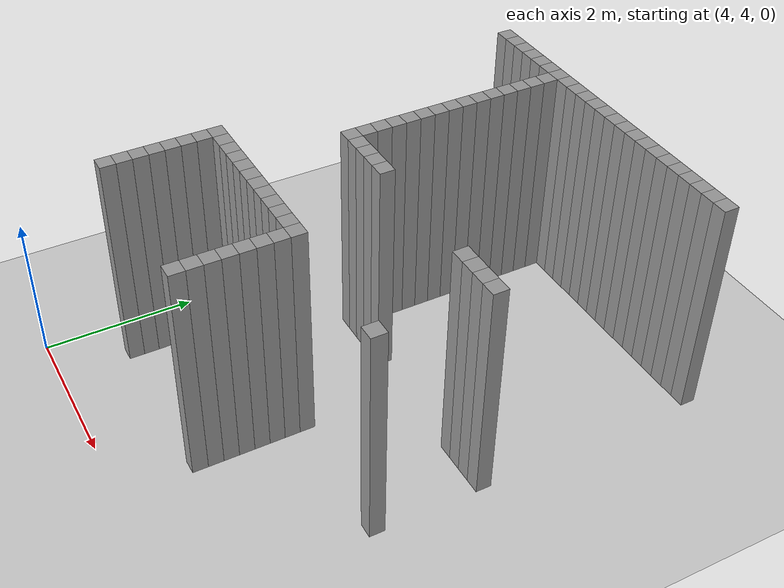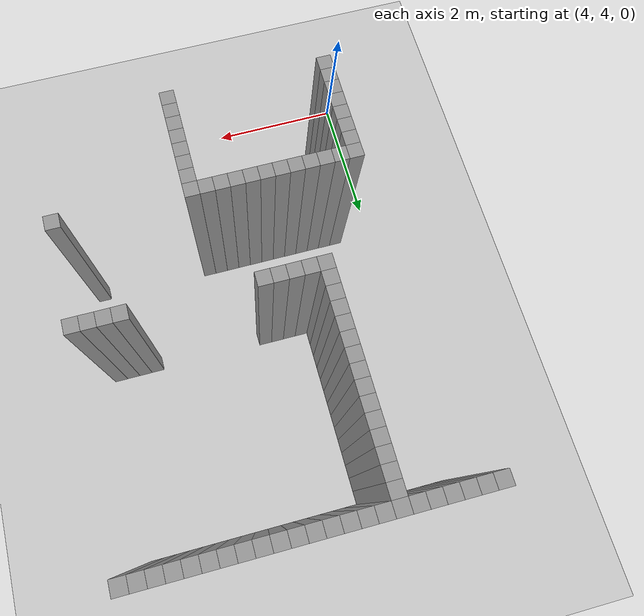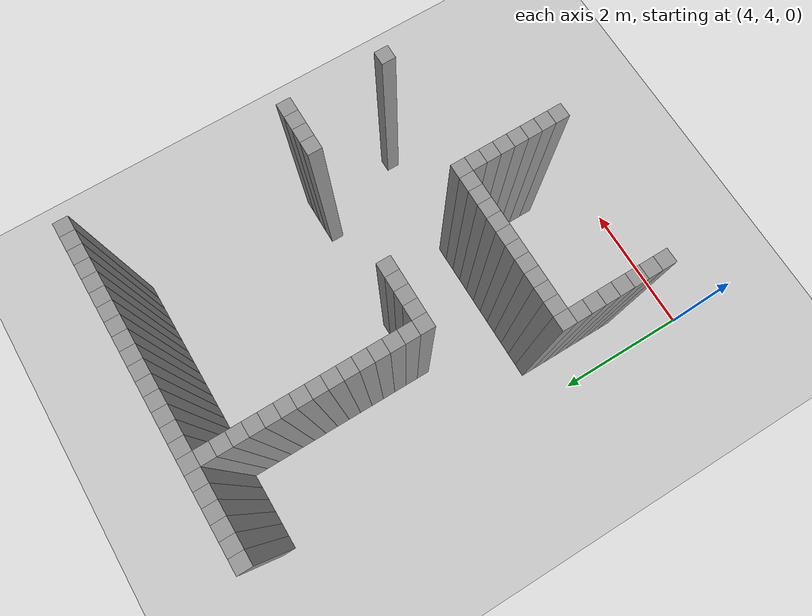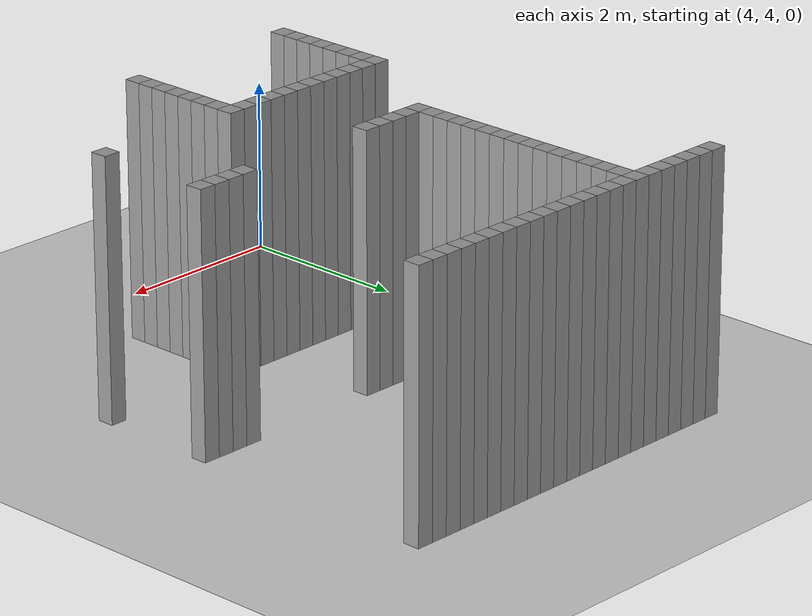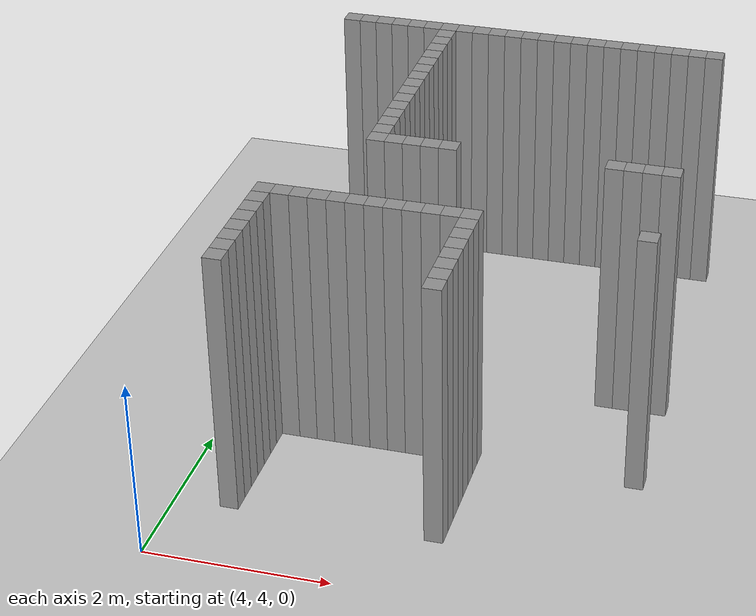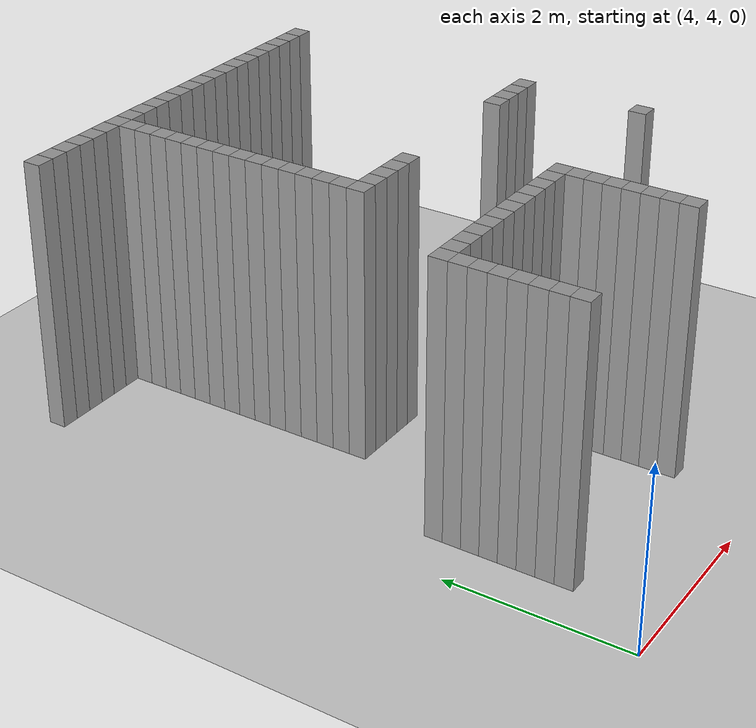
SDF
<sdf version="1.7">
 <world name="default">
  <model name="ground_plane">
   <static>1</static>
   <link name="link">
    <collision name="collision">
     <geometry><plane><normal>0 0 1</normal><size>100 100</size></plane></geometry>
     <surface>
      <contact><collide_bitmask>65535</collide_bitmask></contact>
      <friction><ode><mu>100</mu><mu2>50</mu2></ode></friction>
     </surface>
    </collision>
    <visual name="visual">
     <cast_shadows>0</cast_shadows>
     <geometry><plane><normal>0 0 1</normal><size>100 100</size></plane></geometry>
     <material>
      <script><uri>file://media/materials/scripts/gazebo.material</uri><name>Gazebo/Grey</name></script>
     </material>
    </visual>
   </link>
  </model>
  <model name="image1">
   <pose>-1 -1 0 0 -0 0</pose>
   <link name="Wall_220">
    <collision name="Wall_220_Collision">
     <geometry><box><size>0.2 0.2 3</size></box></geometry>
     <pose>0 0 1.5 0 -0 0</pose>
    </collision>
    <visual name="Wall_220_Visual">
     <pose>0 0 1.5 0 -0 0</pose>
     <geometry><box><size>0.2 0.2 3</size></box></geometry>
     <material>
      <script><uri>file://media/materials/scripts/gazebo.material</uri><name>Gazebo/Grey</name></script>
      <ambient>1 1 1 1</ambient>
     </material>
     <meta><layer>0</layer></meta>
    </visual>
    <pose>5.2 11.8 0 0 -0 0</pose>
   </link>
   <link name="Wall_223">
    <collision name="Wall_223_Collision">
     <geometry><box><size>0.2 0.2 3</size></box></geometry>
     <pose>0 0 1.5 0 -0 0</pose>
    </collision>
    <visual name="Wall_223_Visual">
     <pose>0 0 1.5 0 -0 0</pose>
     <geometry><box><size>0.2 0.2 3</size></box></geometry>
     <material>
      <script><uri>file://media/materials/scripts/gazebo.material</uri><name>Gazebo/Grey</name></script>
      <ambient>1 1 1 1</ambient>
     </material>
     <meta><layer>0</layer></meta>
    </visual>
    <pose>5.4 11.8 0 0 -0 0</pose>
   </link>
   <link name="Wall_247">
    <collision name="Wall_247_Collision">
     <geometry><box><size>0.2 0.2 3</size></box></geometry>
     <pose>0 0 1.5 0 -0 0</pose>
    </collision>
    <visual name="Wall_247_Visual">
     <pose>0 0 1.5 0 -0 0</pose>
     <geometry><box><size>0.2 0.2 3</size></box></geometry>
     <material>
      <script><uri>file://media/materials/scripts/gazebo.material</uri><name>Gazebo/Grey</name></script>
      <ambient>1 1 1 1</ambient>
     </material>
     <meta><layer>0</layer></meta>
    </visual>
    <pose>5.6000000000000005 6.0 0 0 -0 0</pose>
   </link>
   <link name="Wall_248">
    <collision name="Wall_248_Collision">
     <geometry><box><size>0.2 0.2 3</size></box></geometry>
     <pose>0 0 1.5 0 -0 0</pose>
    </collision>
    <visual name="Wall_248_Visual">
     <pose>0 0 1.5 0 -0 0</pose>
     <geometry><box><size>0.2 0.2 3</size></box></geometry>
     <material>
      <script><uri>file://media/materials/scripts/gazebo.material</uri><name>Gazebo/Grey</name></script>
      <ambient>1 1 1 1</ambient>
     </material>
     <meta><layer>0</layer></meta>
    </visual>
    <pose>5.6000000000000005 6.2 0 0 -0 0</pose>
   </link>
   <link name="Wall_249">
    <collision name="Wall_249_Collision">
     <geometry><box><size>0.2 0.2 3</size></box></geometry>
     <pose>0 0 1.5 0 -0 0</pose>
    </collision>
    <visual name="Wall_249_Visual">
     <pose>0 0 1.5 0 -0 0</pose>
     <geometry><box><size>0.2 0.2 3</size></box></geometry>
     <material>
      <script><uri>file://media/materials/scripts/gazebo.material</uri><name>Gazebo/Grey</name></script>
      <ambient>1 1 1 1</ambient>
     </material>
     <meta><layer>0</layer></meta>
    </visual>
    <pose>5.6000000000000005 6.4 0 0 -0 0</pose>
   </link>
   <link name="Wall_250">
    <collision name="Wall_250_Collision">
     <geometry><box><size>0.2 0.2 3</size></box></geometry>
     <pose>0 0 1.5 0 -0 0</pose>
    </collision>
    <visual name="Wall_250_Visual">
     <pose>0 0 1.5 0 -0 0</pose>
     <geometry><box><size>0.2 0.2 3</size></box></geometry>
     <material>
      <script><uri>file://media/materials/scripts/gazebo.material</uri><name>Gazebo/Grey</name></script>
      <ambient>1 1 1 1</ambient>
     </material>
     <meta><layer>0</layer></meta>
    </visual>
    <pose>5.6000000000000005 6.6000000000000005 0 0 -0 0</pose>
   </link>
   <link name="Wall_251">
    <collision name="Wall_251_Collision">
     <geometry><box><size>0.2 0.2 3</size></box></geometry>
     <pose>0 0 1.5 0 -0 0</pose>
    </collision>
    <visual name="Wall_251_Visual">
     <pose>0 0 1.5 0 -0 0</pose>
     <geometry><box><size>0.2 0.2 3</size></box></geometry>
     <material>
      <script><uri>file://media/materials/scripts/gazebo.material</uri><name>Gazebo/Grey</name></script>
      <ambient>1 1 1 1</ambient>
     </material>
     <meta><layer>0</layer></meta>
    </visual>
    <pose>5.6000000000000005 6.800000000000001 0 0 -0 0</pose>
   </link>
   <link name="Wall_252">
    <collision name="Wall_252_Collision">
     <geometry><box><size>0.2 0.2 3</size></box></geometry>
     <pose>0 0 1.5 0 -0 0</pose>
    </collision>
    <visual name="Wall_252_Visual">
     <pose>0 0 1.5 0 -0 0</pose>
     <geometry><box><size>0.2 0.2 3</size></box></geometry>
     <material>
      <script><uri>file://media/materials/scripts/gazebo.material</uri><name>Gazebo/Grey</name></script>
      <ambient>1 1 1 1</ambient>
     </material>
     <meta><layer>0</layer></meta>
    </visual>
    <pose>5.6000000000000005 7.0 0 0 -0 0</pose>
   </link>
   <link name="Wall_253">
    <collision name="Wall_253_Collision">
     <geometry><box><size>0.2 0.2 3</size></box></geometry>
     <pose>0 0 1.5 0 -0 0</pose>
    </collision>
    <visual name="Wall_253_Visual">
     <pose>0 0 1.5 0 -0 0</pose>
     <geometry><box><size>0.2 0.2 3</size></box></geometry>
     <material>
      <script><uri>file://media/materials/scripts/gazebo.material</uri><name>Gazebo/Grey</name></script>
      <ambient>1 1 1 1</ambient>
     </material>
     <meta><layer>0</layer></meta>
    </visual>
    <pose>5.6000000000000005 7.2 0 0 -0 0</pose>
   </link>
   <link name="Wall_254">
    <collision name="Wall_254_Collision">
     <geometry><box><size>0.2 0.2 3</size></box></geometry>
     <pose>0 0 1.5 0 -0 0</pose>
    </collision>
    <visual name="Wall_254_Visual">
     <pose>0 0 1.5 0 -0 0</pose>
     <geometry><box><size>0.2 0.2 3</size></box></geometry>
     <material>
      <script><uri>file://media/materials/scripts/gazebo.material</uri><name>Gazebo/Grey</name></script>
      <ambient>1 1 1 1</ambient>
     </material>
     <meta><layer>0</layer></meta>
    </visual>
    <pose>5.6000000000000005 7.4 0 0 -0 0</pose>
   </link>
   <link name="Wall_255">
    <collision name="Wall_255_Collision">
     <geometry><box><size>0.2 0.2 3</size></box></geometry>
     <pose>0 0 1.5 0 -0 0</pose>
    </collision>
    <visual name="Wall_255_Visual">
     <pose>0 0 1.5 0 -0 0</pose>
     <geometry><box><size>0.2 0.2 3</size></box></geometry>
     <material>
      <script><uri>file://media/materials/scripts/gazebo.material</uri><name>Gazebo/Grey</name></script>
      <ambient>1 1 1 1</ambient>
     </material>
     <meta><layer>0</layer></meta>
    </visual>
    <pose>5.6000000000000005 11.8 0 0 -0 0</pose>
   </link>
   <link name="Wall_257">
    <collision name="Wall_257_Collision">
     <geometry><box><size>0.2 0.2 3</size></box></geometry>
     <pose>0 0 1.5 0 -0 0</pose>
    </collision>
    <visual name="Wall_257_Visual">
     <pose>0 0 1.5 0 -0 0</pose>
     <geometry><box><size>0.2 0.2 3</size></box></geometry>
     <material>
      <script><uri>file://media/materials/scripts/gazebo.material</uri><name>Gazebo/Grey</name></script>
      <ambient>1 1 1 1</ambient>
     </material>
     <meta><layer>0</layer></meta>
    </visual>
    <pose>5.800000000000001 7.4 0 0 -0 0</pose>
   </link>
   <link name="Wall_258">
    <collision name="Wall_258_Collision">
     <geometry><box><size>0.2 0.2 3</size></box></geometry>
     <pose>0 0 1.5 0 -0 0</pose>
    </collision>
    <visual name="Wall_258_Visual">
     <pose>0 0 1.5 0 -0 0</pose>
     <geometry><box><size>0.2 0.2 3</size></box></geometry>
     <material>
      <script><uri>file://media/materials/scripts/gazebo.material</uri><name>Gazebo/Grey</name></script>
      <ambient>1 1 1 1</ambient>
     </material>
     <meta><layer>0</layer></meta>
    </visual>
    <pose>5.800000000000001 11.8 0 0 -0 0</pose>
   </link>
   <link name="Wall_260">
    <collision name="Wall_260_Collision">
     <geometry><box><size>0.2 0.2 3</size></box></geometry>
     <pose>0 0 1.5 0 -0 0</pose>
    </collision>
    <visual name="Wall_260_Visual">
     <pose>0 0 1.5 0 -0 0</pose>
     <geometry><box><size>0.2 0.2 3</size></box></geometry>
     <material>
      <script><uri>file://media/materials/scripts/gazebo.material</uri><name>Gazebo/Grey</name></script>
      <ambient>1 1 1 1</ambient>
     </material>
     <meta><layer>0</layer></meta>
    </visual>
    <pose>6.0 7.4 0 0 -0 0</pose>
   </link>
   <link name="Wall_261">
    <collision name="Wall_261_Collision">
     <geometry><box><size>0.2 0.2 3</size></box></geometry>
     <pose>0 0 1.5 0 -0 0</pose>
    </collision>
    <visual name="Wall_261_Visual">
     <pose>0 0 1.5 0 -0 0</pose>
     <geometry><box><size>0.2 0.2 3</size></box></geometry>
     <material>
      <script><uri>file://media/materials/scripts/gazebo.material</uri><name>Gazebo/Grey</name></script>
      <ambient>1 1 1 1</ambient>
     </material>
     <meta><layer>0</layer></meta>
    </visual>
    <pose>6.0 11.8 0 0 -0 0</pose>
   </link>
   <link name="Wall_263">
    <collision name="Wall_263_Collision">
     <geometry><box><size>0.2 0.2 3</size></box></geometry>
     <pose>0 0 1.5 0 -0 0</pose>
    </collision>
    <visual name="Wall_263_Visual">
     <pose>0 0 1.5 0 -0 0</pose>
     <geometry><box><size>0.2 0.2 3</size></box></geometry>
     <material>
      <script><uri>file://media/materials/scripts/gazebo.material</uri><name>Gazebo/Grey</name></script>
      <ambient>1 1 1 1</ambient>
     </material>
     <meta><layer>0</layer></meta>
    </visual>
    <pose>6.2 7.4 0 0 -0 0</pose>
   </link>
   <link name="Wall_264">
    <collision name="Wall_264_Collision">
     <geometry><box><size>0.2 0.2 3</size></box></geometry>
     <pose>0 0 1.5 0 -0 0</pose>
    </collision>
    <visual name="Wall_264_Visual">
     <pose>0 0 1.5 0 -0 0</pose>
     <geometry><box><size>0.2 0.2 3</size></box></geometry>
     <material>
      <script><uri>file://media/materials/scripts/gazebo.material</uri><name>Gazebo/Grey</name></script>
      <ambient>1 1 1 1</ambient>
     </material>
     <meta><layer>0</layer></meta>
    </visual>
    <pose>6.2 11.8 0 0 -0 0</pose>
   </link>
   <link name="Wall_266">
    <collision name="Wall_266_Collision">
     <geometry><box><size>0.2 0.2 3</size></box></geometry>
     <pose>0 0 1.5 0 -0 0</pose>
    </collision>
    <visual name="Wall_266_Visual">
     <pose>0 0 1.5 0 -0 0</pose>
     <geometry><box><size>0.2 0.2 3</size></box></geometry>
     <material>
      <script><uri>file://media/materials/scripts/gazebo.material</uri><name>Gazebo/Grey</name></script>
      <ambient>1 1 1 1</ambient>
     </material>
     <meta><layer>0</layer></meta>
    </visual>
    <pose>6.4 7.4 0 0 -0 0</pose>
   </link>
   <link name="Wall_267">
    <collision name="Wall_267_Collision">
     <geometry><box><size>0.2 0.2 3</size></box></geometry>
     <pose>0 0 1.5 0 -0 0</pose>
    </collision>
    <visual name="Wall_267_Visual">
     <pose>0 0 1.5 0 -0 0</pose>
     <geometry><box><size>0.2 0.2 3</size></box></geometry>
     <material>
      <script><uri>file://media/materials/scripts/gazebo.material</uri><name>Gazebo/Grey</name></script>
      <ambient>1 1 1 1</ambient>
     </material>
     <meta><layer>0</layer></meta>
    </visual>
    <pose>6.4 8.8 0 0 -0 0</pose>
   </link>
   <link name="Wall_268">
    <collision name="Wall_268_Collision">
     <geometry><box><size>0.2 0.2 3</size></box></geometry>
     <pose>0 0 1.5 0 -0 0</pose>
    </collision>
    <visual name="Wall_268_Visual">
     <pose>0 0 1.5 0 -0 0</pose>
     <geometry><box><size>0.2 0.2 3</size></box></geometry>
     <material>
      <script><uri>file://media/materials/scripts/gazebo.material</uri><name>Gazebo/Grey</name></script>
      <ambient>1 1 1 1</ambient>
     </material>
     <meta><layer>0</layer></meta>
    </visual>
    <pose>6.4 9.0 0 0 -0 0</pose>
   </link>
   <link name="Wall_269">
    <collision name="Wall_269_Collision">
     <geometry><box><size>0.2 0.2 3</size></box></geometry>
     <pose>0 0 1.5 0 -0 0</pose>
    </collision>
    <visual name="Wall_269_Visual">
     <pose>0 0 1.5 0 -0 0</pose>
     <geometry><box><size>0.2 0.2 3</size></box></geometry>
     <material>
      <script><uri>file://media/materials/scripts/gazebo.material</uri><name>Gazebo/Grey</name></script>
      <ambient>1 1 1 1</ambient>
     </material>
     <meta><layer>0</layer></meta>
    </visual>
    <pose>6.4 9.200000000000001 0 0 -0 0</pose>
   </link>
   <link name="Wall_270">
    <collision name="Wall_270_Collision">
     <geometry><box><size>0.2 0.2 3</size></box></geometry>
     <pose>0 0 1.5 0 -0 0</pose>
    </collision>
    <visual name="Wall_270_Visual">
     <pose>0 0 1.5 0 -0 0</pose>
     <geometry><box><size>0.2 0.2 3</size></box></geometry>
     <material>
      <script><uri>file://media/materials/scripts/gazebo.material</uri><name>Gazebo/Grey</name></script>
      <ambient>1 1 1 1</ambient>
     </material>
     <meta><layer>0</layer></meta>
    </visual>
    <pose>6.4 9.4 0 0 -0 0</pose>
   </link>
   <link name="Wall_271">
    <collision name="Wall_271_Collision">
     <geometry><box><size>0.2 0.2 3</size></box></geometry>
     <pose>0 0 1.5 0 -0 0</pose>
    </collision>
    <visual name="Wall_271_Visual">
     <pose>0 0 1.5 0 -0 0</pose>
     <geometry><box><size>0.2 0.2 3</size></box></geometry>
     <material>
      <script><uri>file://media/materials/scripts/gazebo.material</uri><name>Gazebo/Grey</name></script>
      <ambient>1 1 1 1</ambient>
     </material>
     <meta><layer>0</layer></meta>
    </visual>
    <pose>6.4 9.600000000000001 0 0 -0 0</pose>
   </link>
   <link name="Wall_272">
    <collision name="Wall_272_Collision">
     <geometry><box><size>0.2 0.2 3</size></box></geometry>
     <pose>0 0 1.5 0 -0 0</pose>
    </collision>
    <visual name="Wall_272_Visual">
     <pose>0 0 1.5 0 -0 0</pose>
     <geometry><box><size>0.2 0.2 3</size></box></geometry>
     <material>
      <script><uri>file://media/materials/scripts/gazebo.material</uri><name>Gazebo/Grey</name></script>
      <ambient>1 1 1 1</ambient>
     </material>
     <meta><layer>0</layer></meta>
    </visual>
    <pose>6.4 9.8 0 0 -0 0</pose>
   </link>
   <link name="Wall_273">
    <collision name="Wall_273_Collision">
     <geometry><box><size>0.2 0.2 3</size></box></geometry>
     <pose>0 0 1.5 0 -0 0</pose>
    </collision>
    <visual name="Wall_273_Visual">
     <pose>0 0 1.5 0 -0 0</pose>
     <geometry><box><size>0.2 0.2 3</size></box></geometry>
     <material>
      <script><uri>file://media/materials/scripts/gazebo.material</uri><name>Gazebo/Grey</name></script>
      <ambient>1 1 1 1</ambient>
     </material>
     <meta><layer>0</layer></meta>
    </visual>
    <pose>6.4 10.0 0 0 -0 0</pose>
   </link>
   <link name="Wall_274">
    <collision name="Wall_274_Collision">
     <geometry><box><size>0.2 0.2 3</size></box></geometry>
     <pose>0 0 1.5 0 -0 0</pose>
    </collision>
    <visual name="Wall_274_Visual">
     <pose>0 0 1.5 0 -0 0</pose>
     <geometry><box><size>0.2 0.2 3</size></box></geometry>
     <material>
      <script><uri>file://media/materials/scripts/gazebo.material</uri><name>Gazebo/Grey</name></script>
      <ambient>1 1 1 1</ambient>
     </material>
     <meta><layer>0</layer></meta>
    </visual>
    <pose>6.4 10.200000000000001 0 0 -0 0</pose>
   </link>
   <link name="Wall_275">
    <collision name="Wall_275_Collision">
     <geometry><box><size>0.2 0.2 3</size></box></geometry>
     <pose>0 0 1.5 0 -0 0</pose>
    </collision>
    <visual name="Wall_275_Visual">
     <pose>0 0 1.5 0 -0 0</pose>
     <geometry><box><size>0.2 0.2 3</size></box></geometry>
     <material>
      <script><uri>file://media/materials/scripts/gazebo.material</uri><name>Gazebo/Grey</name></script>
      <ambient>1 1 1 1</ambient>
     </material>
     <meta><layer>0</layer></meta>
    </visual>
    <pose>6.4 10.4 0 0 -0 0</pose>
   </link>
   <link name="Wall_276">
    <collision name="Wall_276_Collision">
     <geometry><box><size>0.2 0.2 3</size></box></geometry>
     <pose>0 0 1.5 0 -0 0</pose>
    </collision>
    <visual name="Wall_276_Visual">
     <pose>0 0 1.5 0 -0 0</pose>
     <geometry><box><size>0.2 0.2 3</size></box></geometry>
     <material>
      <script><uri>file://media/materials/scripts/gazebo.material</uri><name>Gazebo/Grey</name></script>
      <ambient>1 1 1 1</ambient>
     </material>
     <meta><layer>0</layer></meta>
    </visual>
    <pose>6.4 10.600000000000001 0 0 -0 0</pose>
   </link>
   <link name="Wall_277">
    <collision name="Wall_277_Collision">
     <geometry><box><size>0.2 0.2 3</size></box></geometry>
     <pose>0 0 1.5 0 -0 0</pose>
    </collision>
    <visual name="Wall_277_Visual">
     <pose>0 0 1.5 0 -0 0</pose>
     <geometry><box><size>0.2 0.2 3</size></box></geometry>
     <material>
      <script><uri>file://media/materials/scripts/gazebo.material</uri><name>Gazebo/Grey</name></script>
      <ambient>1 1 1 1</ambient>
     </material>
     <meta><layer>0</layer></meta>
    </visual>
    <pose>6.4 10.8 0 0 -0 0</pose>
   </link>
   <link name="Wall_278">
    <collision name="Wall_278_Collision">
     <geometry><box><size>0.2 0.2 3</size></box></geometry>
     <pose>0 0 1.5 0 -0 0</pose>
    </collision>
    <visual name="Wall_278_Visual">
     <pose>0 0 1.5 0 -0 0</pose>
     <geometry><box><size>0.2 0.2 3</size></box></geometry>
     <material>
      <script><uri>file://media/materials/scripts/gazebo.material</uri><name>Gazebo/Grey</name></script>
      <ambient>1 1 1 1</ambient>
     </material>
     <meta><layer>0</layer></meta>
    </visual>
    <pose>6.4 11.0 0 0 -0 0</pose>
   </link>
   <link name="Wall_279">
    <collision name="Wall_279_Collision">
     <geometry><box><size>0.2 0.2 3</size></box></geometry>
     <pose>0 0 1.5 0 -0 0</pose>
    </collision>
    <visual name="Wall_279_Visual">
     <pose>0 0 1.5 0 -0 0</pose>
     <geometry><box><size>0.2 0.2 3</size></box></geometry>
     <material>
      <script><uri>file://media/materials/scripts/gazebo.material</uri><name>Gazebo/Grey</name></script>
      <ambient>1 1 1 1</ambient>
     </material>
     <meta><layer>0</layer></meta>
    </visual>
    <pose>6.4 11.200000000000001 0 0 -0 0</pose>
   </link>
   <link name="Wall_280">
    <collision name="Wall_280_Collision">
     <geometry><box><size>0.2 0.2 3</size></box></geometry>
     <pose>0 0 1.5 0 -0 0</pose>
    </collision>
    <visual name="Wall_280_Visual">
     <pose>0 0 1.5 0 -0 0</pose>
     <geometry><box><size>0.2 0.2 3</size></box></geometry>
     <material>
      <script><uri>file://media/materials/scripts/gazebo.material</uri><name>Gazebo/Grey</name></script>
      <ambient>1 1 1 1</ambient>
     </material>
     <meta><layer>0</layer></meta>
    </visual>
    <pose>6.4 11.4 0 0 -0 0</pose>
   </link>
   <link name="Wall_281">
    <collision name="Wall_281_Collision">
     <geometry><box><size>0.2 0.2 3</size></box></geometry>
     <pose>0 0 1.5 0 -0 0</pose>
    </collision>
    <visual name="Wall_281_Visual">
     <pose>0 0 1.5 0 -0 0</pose>
     <geometry><box><size>0.2 0.2 3</size></box></geometry>
     <material>
      <script><uri>file://media/materials/scripts/gazebo.material</uri><name>Gazebo/Grey</name></script>
      <ambient>1 1 1 1</ambient>
     </material>
     <meta><layer>0</layer></meta>
    </visual>
    <pose>6.4 11.600000000000001 0 0 -0 0</pose>
   </link>
   <link name="Wall_282">
    <collision name="Wall_282_Collision">
     <geometry><box><size>0.2 0.2 3</size></box></geometry>
     <pose>0 0 1.5 0 -0 0</pose>
    </collision>
    <visual name="Wall_282_Visual">
     <pose>0 0 1.5 0 -0 0</pose>
     <geometry><box><size>0.2 0.2 3</size></box></geometry>
     <material>
      <script><uri>file://media/materials/scripts/gazebo.material</uri><name>Gazebo/Grey</name></script>
      <ambient>1 1 1 1</ambient>
     </material>
     <meta><layer>0</layer></meta>
    </visual>
    <pose>6.4 11.8 0 0 -0 0</pose>
   </link>
   <link name="Wall_284">
    <collision name="Wall_284_Collision">
     <geometry><box><size>0.2 0.2 3</size></box></geometry>
     <pose>0 0 1.5 0 -0 0</pose>
    </collision>
    <visual name="Wall_284_Visual">
     <pose>0 0 1.5 0 -0 0</pose>
     <geometry><box><size>0.2 0.2 3</size></box></geometry>
     <material>
      <script><uri>file://media/materials/scripts/gazebo.material</uri><name>Gazebo/Grey</name></script>
      <ambient>1 1 1 1</ambient>
     </material>
     <meta><layer>0</layer></meta>
    </visual>
    <pose>6.6000000000000005 7.4 0 0 -0 0</pose>
   </link>
   <link name="Wall_285">
    <collision name="Wall_285_Collision">
     <geometry><box><size>0.2 0.2 3</size></box></geometry>
     <pose>0 0 1.5 0 -0 0</pose>
    </collision>
    <visual name="Wall_285_Visual">
     <pose>0 0 1.5 0 -0 0</pose>
     <geometry><box><size>0.2 0.2 3</size></box></geometry>
     <material>
      <script><uri>file://media/materials/scripts/gazebo.material</uri><name>Gazebo/Grey</name></script>
      <ambient>1 1 1 1</ambient>
     </material>
     <meta><layer>0</layer></meta>
    </visual>
    <pose>6.6000000000000005 8.8 0 0 -0 0</pose>
   </link>
   <link name="Wall_286">
    <collision name="Wall_286_Collision">
     <geometry><box><size>0.2 0.2 3</size></box></geometry>
     <pose>0 0 1.5 0 -0 0</pose>
    </collision>
    <visual name="Wall_286_Visual">
     <pose>0 0 1.5 0 -0 0</pose>
     <geometry><box><size>0.2 0.2 3</size></box></geometry>
     <material>
      <script><uri>file://media/materials/scripts/gazebo.material</uri><name>Gazebo/Grey</name></script>
      <ambient>1 1 1 1</ambient>
     </material>
     <meta><layer>0</layer></meta>
    </visual>
    <pose>6.6000000000000005 11.8 0 0 -0 0</pose>
   </link>
   <link name="Wall_288">
    <collision name="Wall_288_Collision">
     <geometry><box><size>0.2 0.2 3</size></box></geometry>
     <pose>0 0 1.5 0 -0 0</pose>
    </collision>
    <visual name="Wall_288_Visual">
     <pose>0 0 1.5 0 -0 0</pose>
     <geometry><box><size>0.2 0.2 3</size></box></geometry>
     <material>
      <script><uri>file://media/materials/scripts/gazebo.material</uri><name>Gazebo/Grey</name></script>
      <ambient>1 1 1 1</ambient>
     </material>
     <meta><layer>0</layer></meta>
    </visual>
    <pose>6.800000000000001 7.4 0 0 -0 0</pose>
   </link>
   <link name="Wall_289">
    <collision name="Wall_289_Collision">
     <geometry><box><size>0.2 0.2 3</size></box></geometry>
     <pose>0 0 1.5 0 -0 0</pose>
    </collision>
    <visual name="Wall_289_Visual">
     <pose>0 0 1.5 0 -0 0</pose>
     <geometry><box><size>0.2 0.2 3</size></box></geometry>
     <material>
      <script><uri>file://media/materials/scripts/gazebo.material</uri><name>Gazebo/Grey</name></script>
      <ambient>1 1 1 1</ambient>
     </material>
     <meta><layer>0</layer></meta>
    </visual>
    <pose>6.800000000000001 8.8 0 0 -0 0</pose>
   </link>
   <link name="Wall_290">
    <collision name="Wall_290_Collision">
     <geometry><box><size>0.2 0.2 3</size></box></geometry>
     <pose>0 0 1.5 0 -0 0</pose>
    </collision>
    <visual name="Wall_290_Visual">
     <pose>0 0 1.5 0 -0 0</pose>
     <geometry><box><size>0.2 0.2 3</size></box></geometry>
     <material>
      <script><uri>file://media/materials/scripts/gazebo.material</uri><name>Gazebo/Grey</name></script>
      <ambient>1 1 1 1</ambient>
     </material>
     <meta><layer>0</layer></meta>
    </visual>
    <pose>6.800000000000001 11.8 0 0 -0 0</pose>
   </link>
   <link name="Wall_292">
    <collision name="Wall_292_Collision">
     <geometry><box><size>0.2 0.2 3</size></box></geometry>
     <pose>0 0 1.5 0 -0 0</pose>
    </collision>
    <visual name="Wall_292_Visual">
     <pose>0 0 1.5 0 -0 0</pose>
     <geometry><box><size>0.2 0.2 3</size></box></geometry>
     <material>
      <script><uri>file://media/materials/scripts/gazebo.material</uri><name>Gazebo/Grey</name></script>
      <ambient>1 1 1 1</ambient>
     </material>
     <meta><layer>0</layer></meta>
    </visual>
    <pose>7.0 7.4 0 0 -0 0</pose>
   </link>
   <link name="Wall_293">
    <collision name="Wall_293_Collision">
     <geometry><box><size>0.2 0.2 3</size></box></geometry>
     <pose>0 0 1.5 0 -0 0</pose>
    </collision>
    <visual name="Wall_293_Visual">
     <pose>0 0 1.5 0 -0 0</pose>
     <geometry><box><size>0.2 0.2 3</size></box></geometry>
     <material>
      <script><uri>file://media/materials/scripts/gazebo.material</uri><name>Gazebo/Grey</name></script>
      <ambient>1 1 1 1</ambient>
     </material>
     <meta><layer>0</layer></meta>
    </visual>
    <pose>7.0 8.8 0 0 -0 0</pose>
   </link>
   <link name="Wall_294">
    <collision name="Wall_294_Collision">
     <geometry><box><size>0.2 0.2 3</size></box></geometry>
     <pose>0 0 1.5 0 -0 0</pose>
    </collision>
    <visual name="Wall_294_Visual">
     <pose>0 0 1.5 0 -0 0</pose>
     <geometry><box><size>0.2 0.2 3</size></box></geometry>
     <material>
      <script><uri>file://media/materials/scripts/gazebo.material</uri><name>Gazebo/Grey</name></script>
      <ambient>1 1 1 1</ambient>
     </material>
     <meta><layer>0</layer></meta>
    </visual>
    <pose>7.0 11.8 0 0 -0 0</pose>
   </link>
   <link name="Wall_296">
    <collision name="Wall_296_Collision">
     <geometry><box><size>0.2 0.2 3</size></box></geometry>
     <pose>0 0 1.5 0 -0 0</pose>
    </collision>
    <visual name="Wall_296_Visual">
     <pose>0 0 1.5 0 -0 0</pose>
     <geometry><box><size>0.2 0.2 3</size></box></geometry>
     <material>
      <script><uri>file://media/materials/scripts/gazebo.material</uri><name>Gazebo/Grey</name></script>
      <ambient>1 1 1 1</ambient>
     </material>
     <meta><layer>0</layer></meta>
    </visual>
    <pose>7.2 7.4 0 0 -0 0</pose>
   </link>
   <link name="Wall_297">
    <collision name="Wall_297_Collision">
     <geometry><box><size>0.2 0.2 3</size></box></geometry>
     <pose>0 0 1.5 0 -0 0</pose>
    </collision>
    <visual name="Wall_297_Visual">
     <pose>0 0 1.5 0 -0 0</pose>
     <geometry><box><size>0.2 0.2 3</size></box></geometry>
     <material>
      <script><uri>file://media/materials/scripts/gazebo.material</uri><name>Gazebo/Grey</name></script>
      <ambient>1 1 1 1</ambient>
     </material>
     <meta><layer>0</layer></meta>
    </visual>
    <pose>7.2 8.8 0 0 -0 0</pose>
   </link>
   <link name="Wall_298">
    <collision name="Wall_298_Collision">
     <geometry><box><size>0.2 0.2 3</size></box></geometry>
     <pose>0 0 1.5 0 -0 0</pose>
    </collision>
    <visual name="Wall_298_Visual">
     <pose>0 0 1.5 0 -0 0</pose>
     <geometry><box><size>0.2 0.2 3</size></box></geometry>
     <material>
      <script><uri>file://media/materials/scripts/gazebo.material</uri><name>Gazebo/Grey</name></script>
      <ambient>1 1 1 1</ambient>
     </material>
     <meta><layer>0</layer></meta>
    </visual>
    <pose>7.2 11.8 0 0 -0 0</pose>
   </link>
   <link name="Wall_319">
    <collision name="Wall_319_Collision">
     <geometry><box><size>0.2 0.2 3</size></box></geometry>
     <pose>0 0 1.5 0 -0 0</pose>
    </collision>
    <visual name="Wall_319_Visual">
     <pose>0 0 1.5 0 -0 0</pose>
     <geometry><box><size>0.2 0.2 3</size></box></geometry>
     <material>
      <script><uri>file://media/materials/scripts/gazebo.material</uri><name>Gazebo/Grey</name></script>
      <ambient>1 1 1 1</ambient>
     </material>
     <meta><layer>0</layer></meta>
    </visual>
    <pose>7.4 7.4 0 0 -0 0</pose>
   </link>
   <link name="Wall_320">
    <collision name="Wall_320_Collision">
     <geometry><box><size>0.2 0.2 3</size></box></geometry>
     <pose>0 0 1.5 0 -0 0</pose>
    </collision>
    <visual name="Wall_320_Visual">
     <pose>0 0 1.5 0 -0 0</pose>
     <geometry><box><size>0.2 0.2 3</size></box></geometry>
     <material>
      <script><uri>file://media/materials/scripts/gazebo.material</uri><name>Gazebo/Grey</name></script>
      <ambient>1 1 1 1</ambient>
     </material>
     <meta><layer>0</layer></meta>
    </visual>
    <pose>7.4 11.8 0 0 -0 0</pose>
   </link>
   <link name="Wall_324">
    <collision name="Wall_324_Collision">
     <geometry><box><size>0.2 0.2 3</size></box></geometry>
     <pose>0 0 1.5 0 -0 0</pose>
    </collision>
    <visual name="Wall_324_Visual">
     <pose>0 0 1.5 0 -0 0</pose>
     <geometry><box><size>0.2 0.2 3</size></box></geometry>
     <material>
      <script><uri>file://media/materials/scripts/gazebo.material</uri><name>Gazebo/Grey</name></script>
      <ambient>1 1 1 1</ambient>
     </material>
     <meta><layer>0</layer></meta>
    </visual>
    <pose>7.6000000000000005 7.4 0 0 -0 0</pose>
   </link>
   <link name="Wall_325">
    <collision name="Wall_325_Collision">
     <geometry><box><size>0.2 0.2 3</size></box></geometry>
     <pose>0 0 1.5 0 -0 0</pose>
    </collision>
    <visual name="Wall_325_Visual">
     <pose>0 0 1.5 0 -0 0</pose>
     <geometry><box><size>0.2 0.2 3</size></box></geometry>
     <material>
      <script><uri>file://media/materials/scripts/gazebo.material</uri><name>Gazebo/Grey</name></script>
      <ambient>1 1 1 1</ambient>
     </material>
     <meta><layer>0</layer></meta>
    </visual>
    <pose>7.6000000000000005 11.8 0 0 -0 0</pose>
   </link>
   <link name="Wall_332">
    <collision name="Wall_332_Collision">
     <geometry><box><size>0.2 0.2 3</size></box></geometry>
     <pose>0 0 1.5 0 -0 0</pose>
    </collision>
    <visual name="Wall_332_Visual">
     <pose>0 0 1.5 0 -0 0</pose>
     <geometry><box><size>0.2 0.2 3</size></box></geometry>
     <material>
      <script><uri>file://media/materials/scripts/gazebo.material</uri><name>Gazebo/Grey</name></script>
      <ambient>1 1 1 1</ambient>
     </material>
     <meta><layer>0</layer></meta>
    </visual>
    <pose>7.800000000000001 6.0 0 0 -0 0</pose>
   </link>
   <link name="Wall_333">
    <collision name="Wall_333_Collision">
     <geometry><box><size>0.2 0.2 3</size></box></geometry>
     <pose>0 0 1.5 0 -0 0</pose>
    </collision>
    <visual name="Wall_333_Visual">
     <pose>0 0 1.5 0 -0 0</pose>
     <geometry><box><size>0.2 0.2 3</size></box></geometry>
     <material>
      <script><uri>file://media/materials/scripts/gazebo.material</uri><name>Gazebo/Grey</name></script>
      <ambient>1 1 1 1</ambient>
     </material>
     <meta><layer>0</layer></meta>
    </visual>
    <pose>7.800000000000001 6.2 0 0 -0 0</pose>
   </link>
   <link name="Wall_334">
    <collision name="Wall_334_Collision">
     <geometry><box><size>0.2 0.2 3</size></box></geometry>
     <pose>0 0 1.5 0 -0 0</pose>
    </collision>
    <visual name="Wall_334_Visual">
     <pose>0 0 1.5 0 -0 0</pose>
     <geometry><box><size>0.2 0.2 3</size></box></geometry>
     <material>
      <script><uri>file://media/materials/scripts/gazebo.material</uri><name>Gazebo/Grey</name></script>
      <ambient>1 1 1 1</ambient>
     </material>
     <meta><layer>0</layer></meta>
    </visual>
    <pose>7.800000000000001 6.4 0 0 -0 0</pose>
   </link>
   <link name="Wall_335">
    <collision name="Wall_335_Collision">
     <geometry><box><size>0.2 0.2 3</size></box></geometry>
     <pose>0 0 1.5 0 -0 0</pose>
    </collision>
    <visual name="Wall_335_Visual">
     <pose>0 0 1.5 0 -0 0</pose>
     <geometry><box><size>0.2 0.2 3</size></box></geometry>
     <material>
      <script><uri>file://media/materials/scripts/gazebo.material</uri><name>Gazebo/Grey</name></script>
      <ambient>1 1 1 1</ambient>
     </material>
     <meta><layer>0</layer></meta>
    </visual>
    <pose>7.800000000000001 6.6000000000000005 0 0 -0 0</pose>
   </link>
   <link name="Wall_336">
    <collision name="Wall_336_Collision">
     <geometry><box><size>0.2 0.2 3</size></box></geometry>
     <pose>0 0 1.5 0 -0 0</pose>
    </collision>
    <visual name="Wall_336_Visual">
     <pose>0 0 1.5 0 -0 0</pose>
     <geometry><box><size>0.2 0.2 3</size></box></geometry>
     <material>
      <script><uri>file://media/materials/scripts/gazebo.material</uri><name>Gazebo/Grey</name></script>
      <ambient>1 1 1 1</ambient>
     </material>
     <meta><layer>0</layer></meta>
    </visual>
    <pose>7.800000000000001 6.800000000000001 0 0 -0 0</pose>
   </link>
   <link name="Wall_337">
    <collision name="Wall_337_Collision">
     <geometry><box><size>0.2 0.2 3</size></box></geometry>
     <pose>0 0 1.5 0 -0 0</pose>
    </collision>
    <visual name="Wall_337_Visual">
     <pose>0 0 1.5 0 -0 0</pose>
     <geometry><box><size>0.2 0.2 3</size></box></geometry>
     <material>
      <script><uri>file://media/materials/scripts/gazebo.material</uri><name>Gazebo/Grey</name></script>
      <ambient>1 1 1 1</ambient>
     </material>
     <meta><layer>0</layer></meta>
    </visual>
    <pose>7.800000000000001 7.0 0 0 -0 0</pose>
   </link>
   <link name="Wall_338">
    <collision name="Wall_338_Collision">
     <geometry><box><size>0.2 0.2 3</size></box></geometry>
     <pose>0 0 1.5 0 -0 0</pose>
    </collision>
    <visual name="Wall_338_Visual">
     <pose>0 0 1.5 0 -0 0</pose>
     <geometry><box><size>0.2 0.2 3</size></box></geometry>
     <material>
      <script><uri>file://media/materials/scripts/gazebo.material</uri><name>Gazebo/Grey</name></script>
      <ambient>1 1 1 1</ambient>
     </material>
     <meta><layer>0</layer></meta>
    </visual>
    <pose>7.800000000000001 7.2 0 0 -0 0</pose>
   </link>
   <link name="Wall_339">
    <collision name="Wall_339_Collision">
     <geometry><box><size>0.2 0.2 3</size></box></geometry>
     <pose>0 0 1.5 0 -0 0</pose>
    </collision>
    <visual name="Wall_339_Visual">
     <pose>0 0 1.5 0 -0 0</pose>
     <geometry><box><size>0.2 0.2 3</size></box></geometry>
     <material>
      <script><uri>file://media/materials/scripts/gazebo.material</uri><name>Gazebo/Grey</name></script>
      <ambient>1 1 1 1</ambient>
     </material>
     <meta><layer>0</layer></meta>
    </visual>
    <pose>7.800000000000001 7.4 0 0 -0 0</pose>
   </link>
   <link name="Wall_340">
    <collision name="Wall_340_Collision">
     <geometry><box><size>0.2 0.2 3</size></box></geometry>
     <pose>0 0 1.5 0 -0 0</pose>
    </collision>
    <visual name="Wall_340_Visual">
     <pose>0 0 1.5 0 -0 0</pose>
     <geometry><box><size>0.2 0.2 3</size></box></geometry>
     <material>
      <script><uri>file://media/materials/scripts/gazebo.material</uri><name>Gazebo/Grey</name></script>
      <ambient>1 1 1 1</ambient>
     </material>
     <meta><layer>0</layer></meta>
    </visual>
    <pose>7.800000000000001 11.8 0 0 -0 0</pose>
   </link>
   <link name="Wall_343">
    <collision name="Wall_343_Collision">
     <geometry><box><size>0.2 0.2 3</size></box></geometry>
     <pose>0 0 1.5 0 -0 0</pose>
    </collision>
    <visual name="Wall_343_Visual">
     <pose>0 0 1.5 0 -0 0</pose>
     <geometry><box><size>0.2 0.2 3</size></box></geometry>
     <material>
      <script><uri>file://media/materials/scripts/gazebo.material</uri><name>Gazebo/Grey</name></script>
      <ambient>1 1 1 1</ambient>
     </material>
     <meta><layer>0</layer></meta>
    </visual>
    <pose>8.0 11.8 0 0 -0 0</pose>
   </link>
   <link name="Wall_346">
    <collision name="Wall_346_Collision">
     <geometry><box><size>0.2 0.2 3</size></box></geometry>
     <pose>0 0 1.5 0 -0 0</pose>
    </collision>
    <visual name="Wall_346_Visual">
     <pose>0 0 1.5 0 -0 0</pose>
     <geometry><box><size>0.2 0.2 3</size></box></geometry>
     <material>
      <script><uri>file://media/materials/scripts/gazebo.material</uri><name>Gazebo/Grey</name></script>
      <ambient>1 1 1 1</ambient>
     </material>
     <meta><layer>0</layer></meta>
    </visual>
    <pose>8.200000000000001 11.8 0 0 -0 0</pose>
   </link>
   <link name="Wall_349">
    <collision name="Wall_349_Collision">
     <geometry><box><size>0.2 0.2 3</size></box></geometry>
     <pose>0 0 1.5 0 -0 0</pose>
    </collision>
    <visual name="Wall_349_Visual">
     <pose>0 0 1.5 0 -0 0</pose>
     <geometry><box><size>0.2 0.2 3</size></box></geometry>
     <material>
      <script><uri>file://media/materials/scripts/gazebo.material</uri><name>Gazebo/Grey</name></script>
      <ambient>1 1 1 1</ambient>
     </material>
     <meta><layer>0</layer></meta>
    </visual>
    <pose>8.4 11.8 0 0 -0 0</pose>
   </link>
   <link name="Wall_351">
    <collision name="Wall_351_Collision">
     <geometry><box><size>0.2 0.2 3</size></box></geometry>
     <pose>0 0 1.5 0 -0 0</pose>
    </collision>
    <visual name="Wall_351_Visual">
     <pose>0 0 1.5 0 -0 0</pose>
     <geometry><box><size>0.2 0.2 3</size></box></geometry>
     <material>
      <script><uri>file://media/materials/scripts/gazebo.material</uri><name>Gazebo/Grey</name></script>
      <ambient>1 1 1 1</ambient>
     </material>
     <meta><layer>0</layer></meta>
    </visual>
    <pose>8.6 11.8 0 0 -0 0</pose>
   </link>
   <link name="Wall_353">
    <collision name="Wall_353_Collision">
     <geometry><box><size>0.2 0.2 3</size></box></geometry>
     <pose>0 0 1.5 0 -0 0</pose>
    </collision>
    <visual name="Wall_353_Visual">
     <pose>0 0 1.5 0 -0 0</pose>
     <geometry><box><size>0.2 0.2 3</size></box></geometry>
     <material>
      <script><uri>file://media/materials/scripts/gazebo.material</uri><name>Gazebo/Grey</name></script>
      <ambient>1 1 1 1</ambient>
     </material>
     <meta><layer>0</layer></meta>
    </visual>
    <pose>8.8 11.8 0 0 -0 0</pose>
   </link>
   <link name="Wall_355">
    <collision name="Wall_355_Collision">
     <geometry><box><size>0.2 0.2 3</size></box></geometry>
     <pose>0 0 1.5 0 -0 0</pose>
    </collision>
    <visual name="Wall_355_Visual">
     <pose>0 0 1.5 0 -0 0</pose>
     <geometry><box><size>0.2 0.2 3</size></box></geometry>
     <material>
      <script><uri>file://media/materials/scripts/gazebo.material</uri><name>Gazebo/Grey</name></script>
      <ambient>1 1 1 1</ambient>
     </material>
     <meta><layer>0</layer></meta>
    </visual>
    <pose>9.0 8.8 0 0 -0 0</pose>
   </link>
   <link name="Wall_356">
    <collision name="Wall_356_Collision">
     <geometry><box><size>0.2 0.2 3</size></box></geometry>
     <pose>0 0 1.5 0 -0 0</pose>
    </collision>
    <visual name="Wall_356_Visual">
     <pose>0 0 1.5 0 -0 0</pose>
     <geometry><box><size>0.2 0.2 3</size></box></geometry>
     <material>
      <script><uri>file://media/materials/scripts/gazebo.material</uri><name>Gazebo/Grey</name></script>
      <ambient>1 1 1 1</ambient>
     </material>
     <meta><layer>0</layer></meta>
    </visual>
    <pose>9.0 11.8 0 0 -0 0</pose>
   </link>
   <link name="Wall_358">
    <collision name="Wall_358_Collision">
     <geometry><box><size>0.2 0.2 3</size></box></geometry>
     <pose>0 0 1.5 0 -0 0</pose>
    </collision>
    <visual name="Wall_358_Visual">
     <pose>0 0 1.5 0 -0 0</pose>
     <geometry><box><size>0.2 0.2 3</size></box></geometry>
     <material>
      <script><uri>file://media/materials/scripts/gazebo.material</uri><name>Gazebo/Grey</name></script>
      <ambient>1 1 1 1</ambient>
     </material>
     <meta><layer>0</layer></meta>
    </visual>
    <pose>9.200000000000001 8.8 0 0 -0 0</pose>
   </link>
   <link name="Wall_359">
    <collision name="Wall_359_Collision">
     <geometry><box><size>0.2 0.2 3</size></box></geometry>
     <pose>0 0 1.5 0 -0 0</pose>
    </collision>
    <visual name="Wall_359_Visual">
     <pose>0 0 1.5 0 -0 0</pose>
     <geometry><box><size>0.2 0.2 3</size></box></geometry>
     <material>
      <script><uri>file://media/materials/scripts/gazebo.material</uri><name>Gazebo/Grey</name></script>
      <ambient>1 1 1 1</ambient>
     </material>
     <meta><layer>0</layer></meta>
    </visual>
    <pose>9.200000000000001 11.8 0 0 -0 0</pose>
   </link>
   <link name="Wall_361">
    <collision name="Wall_361_Collision">
     <geometry><box><size>0.2 0.2 3</size></box></geometry>
     <pose>0 0 1.5 0 -0 0</pose>
    </collision>
    <visual name="Wall_361_Visual">
     <pose>0 0 1.5 0 -0 0</pose>
     <geometry><box><size>0.2 0.2 3</size></box></geometry>
     <material>
      <script><uri>file://media/materials/scripts/gazebo.material</uri><name>Gazebo/Grey</name></script>
      <ambient>1 1 1 1</ambient>
     </material>
     <meta><layer>0</layer></meta>
    </visual>
    <pose>9.4 8.8 0 0 -0 0</pose>
   </link>
   <link name="Wall_362">
    <collision name="Wall_362_Collision">
     <geometry><box><size>0.2 0.2 3</size></box></geometry>
     <pose>0 0 1.5 0 -0 0</pose>
    </collision>
    <visual name="Wall_362_Visual">
     <pose>0 0 1.5 0 -0 0</pose>
     <geometry><box><size>0.2 0.2 3</size></box></geometry>
     <material>
      <script><uri>file://media/materials/scripts/gazebo.material</uri><name>Gazebo/Grey</name></script>
      <ambient>1 1 1 1</ambient>
     </material>
     <meta><layer>0</layer></meta>
    </visual>
    <pose>9.4 11.8 0 0 -0 0</pose>
   </link>
   <link name="Wall_367">
    <collision name="Wall_367_Collision">
     <geometry><box><size>0.2 0.2 3</size></box></geometry>
     <pose>0 0 1.5 0 -0 0</pose>
    </collision>
    <visual name="Wall_367_Visual">
     <pose>0 0 1.5 0 -0 0</pose>
     <geometry><box><size>0.2 0.2 3</size></box></geometry>
     <material>
      <script><uri>file://media/materials/scripts/gazebo.material</uri><name>Gazebo/Grey</name></script>
      <ambient>1 1 1 1</ambient>
     </material>
     <meta><layer>0</layer></meta>
    </visual>
    <pose>9.600000000000001 7.4 0 0 -0 0</pose>
   </link>
   <link name="Wall_368">
    <collision name="Wall_368_Collision">
     <geometry><box><size>0.2 0.2 3</size></box></geometry>
     <pose>0 0 1.5 0 -0 0</pose>
    </collision>
    <visual name="Wall_368_Visual">
     <pose>0 0 1.5 0 -0 0</pose>
     <geometry><box><size>0.2 0.2 3</size></box></geometry>
     <material>
      <script><uri>file://media/materials/scripts/gazebo.material</uri><name>Gazebo/Grey</name></script>
      <ambient>1 1 1 1</ambient>
     </material>
     <meta><layer>0</layer></meta>
    </visual>
    <pose>9.600000000000001 8.8 0 0 -0 0</pose>
   </link>
   <link name="Wall_369">
    <collision name="Wall_369_Collision">
     <geometry><box><size>0.2 0.2 3</size></box></geometry>
     <pose>0 0 1.5 0 -0 0</pose>
    </collision>
    <visual name="Wall_369_Visual">
     <pose>0 0 1.5 0 -0 0</pose>
     <geometry><box><size>0.2 0.2 3</size></box></geometry>
     <material>
      <script><uri>file://media/materials/scripts/gazebo.material</uri><name>Gazebo/Grey</name></script>
      <ambient>1 1 1 1</ambient>
     </material>
     <meta><layer>0</layer></meta>
    </visual>
    <pose>9.600000000000001 11.8 0 0 -0 0</pose>
   </link>
   <static>1</static>
  </model>
 </world>
</sdf>
